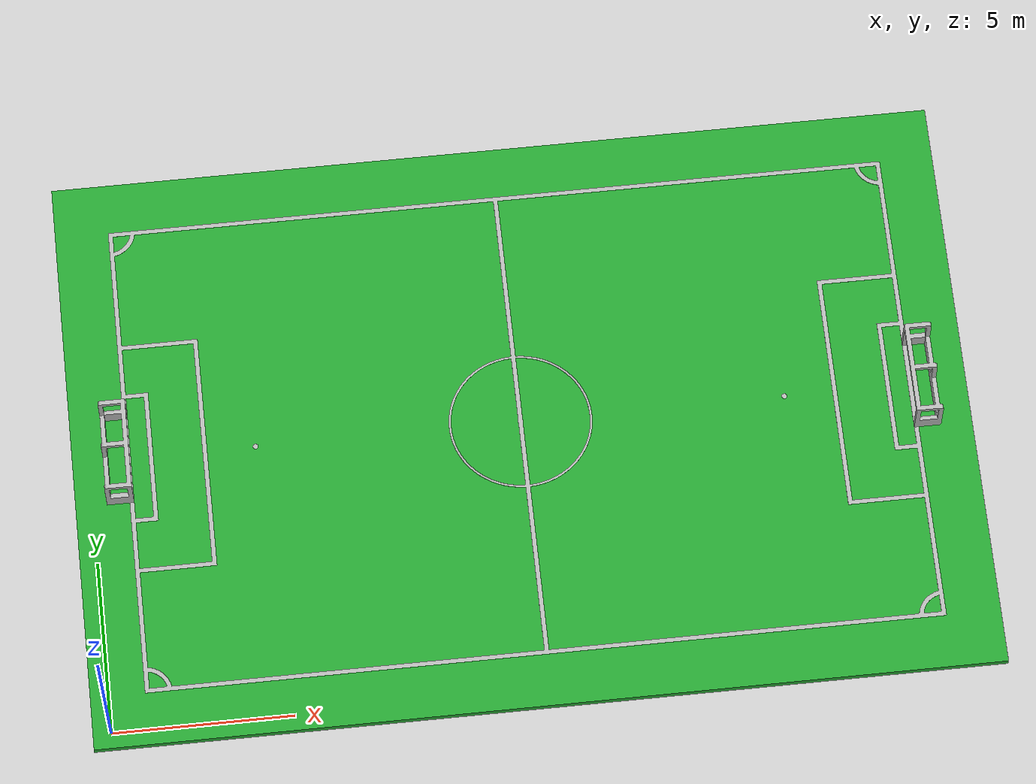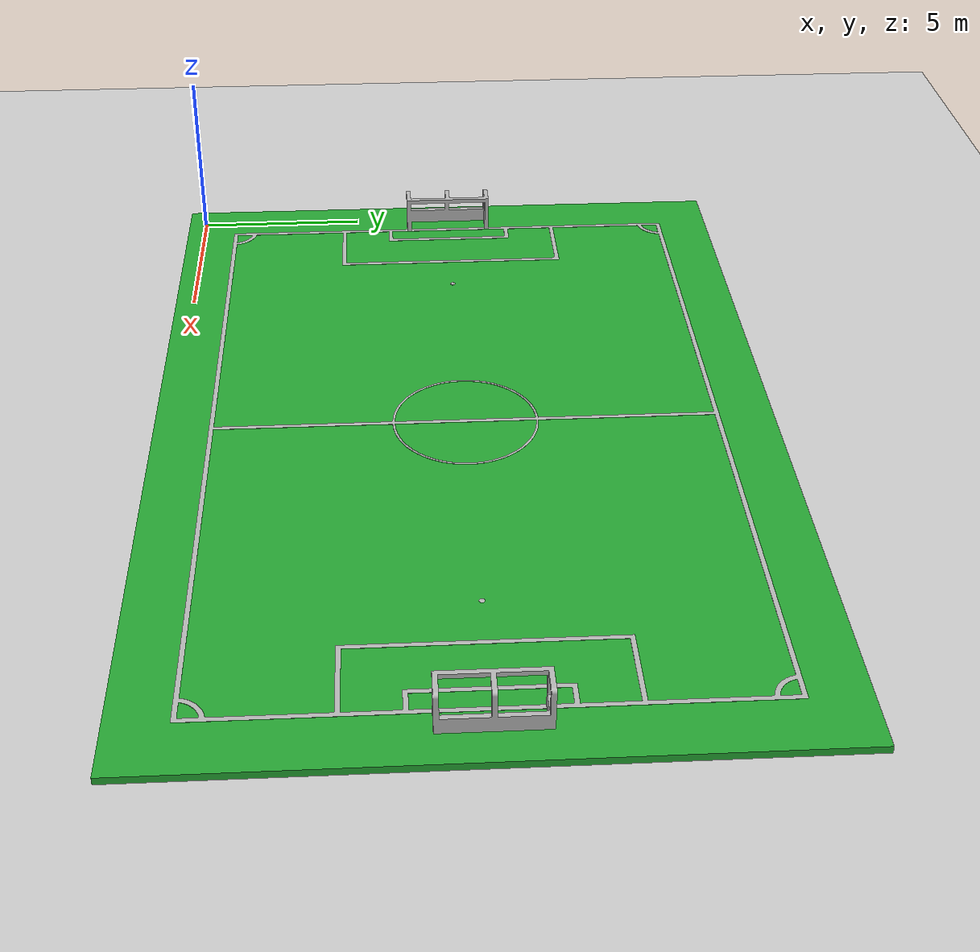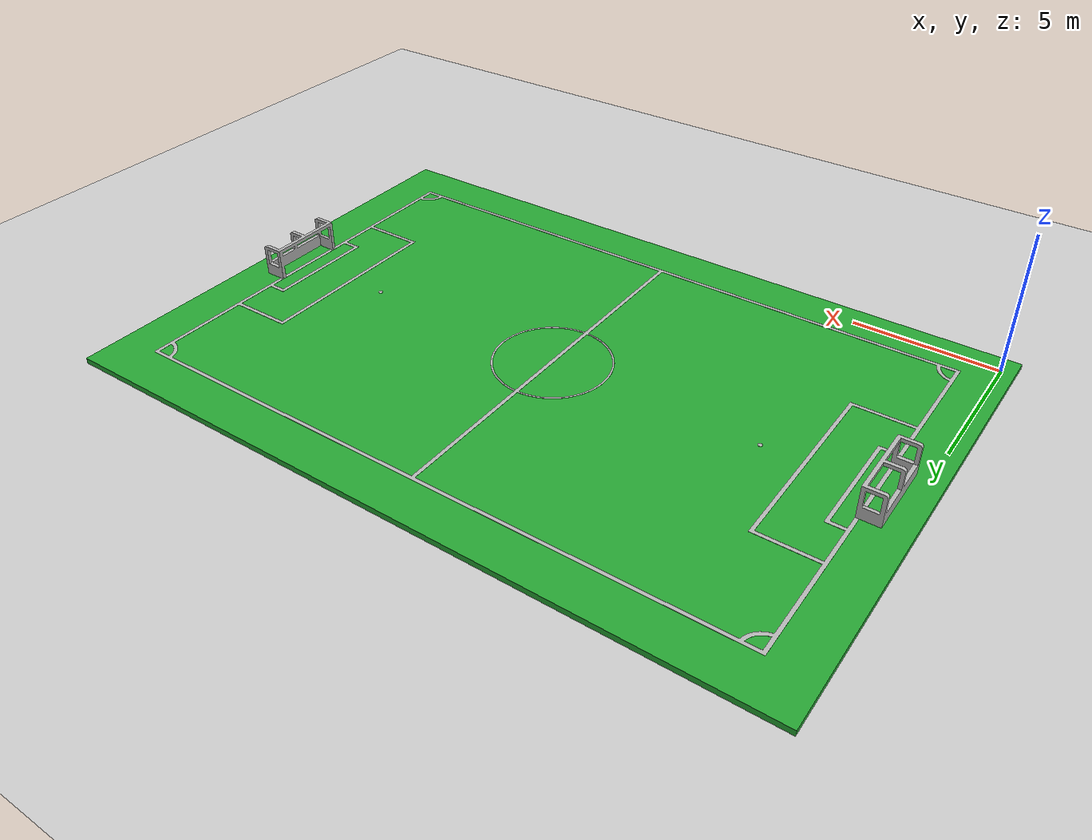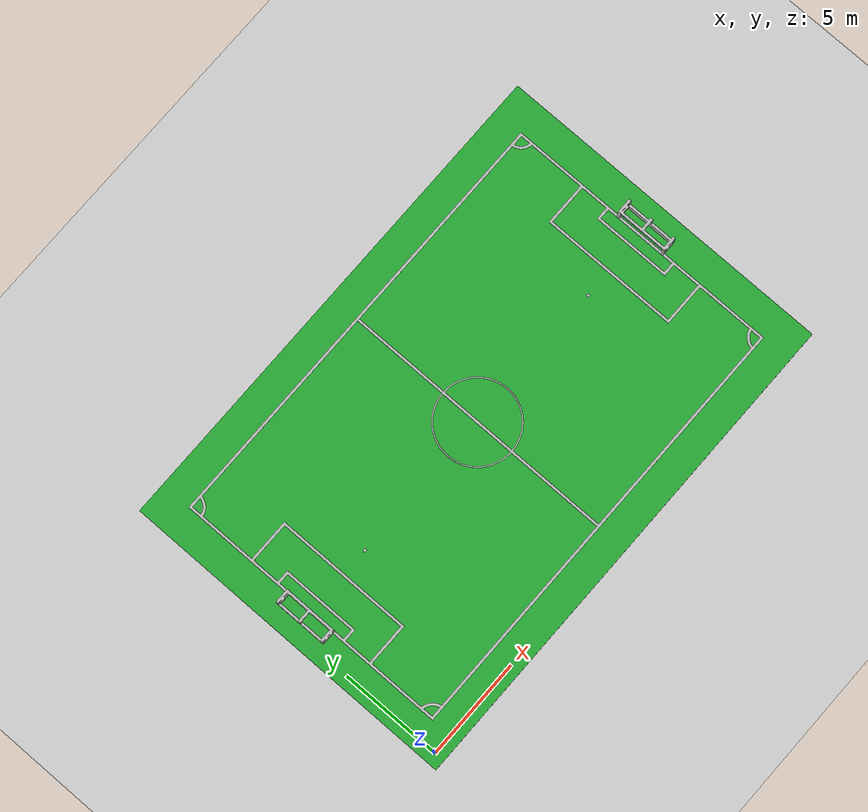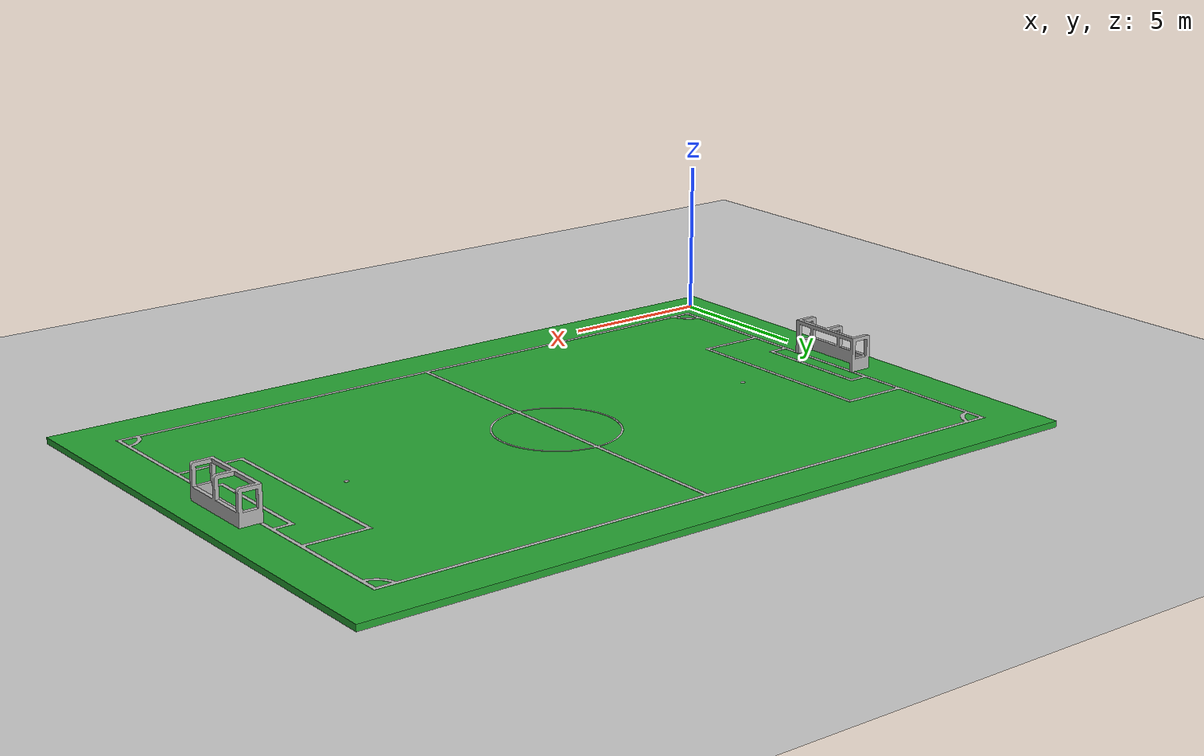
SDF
<sdf version="1.7">
 <world name="default">
  <light name="sun" type="directional">
   <pose>0 0 10 0 -0 0</pose>
   <diffuse>0.8 0.8 0.8 1</diffuse>
   <specular>0.2 0.2 0.2 1</specular>
   <attenuation>
    <range>1000</range>
    <constant>0.9</constant>
    <linear>0.01</linear>
    <quadratic>0.001</quadratic>
   </attenuation>
   <direction>-0.5 0.1 -0.9</direction>
   <spot><inner_angle>0</inner_angle><outer_angle>0</outer_angle><falloff>0</falloff></spot>
  </light>
  <model name="ground_plane">
   <static>1</static>
   <link name="link">
    <collision name="collision">
     <geometry><plane><normal>0 0 1</normal><size>100 100</size></plane></geometry>
     <surface>
      <contact><collide_bitmask>65535</collide_bitmask></contact>
      <friction><ode><mu>100</mu><mu2>50</mu2></ode></friction>
     </surface>
    </collision>
    <visual name="visual">
     <cast_shadows>0</cast_shadows>
     <geometry><plane><normal>0 0 1</normal><size>100 100</size></plane></geometry>
     <material>
      <script><uri>file://media/materials/scripts/gazebo.material</uri><name>Gazebo/Grey</name></script>
     </material>
    </visual>
   </link>
  </model>
  <gravity>0 0 -9.8</gravity>
  <magnetic_field>6e-06 2.3e-05 -4.2e-05</magnetic_field>
  <atmosphere type="adiabatic"/>
  <physics type="ode">
   <max_step_size>0.001</max_step_size>
   <real_time_factor>1</real_time_factor>
   <real_time_update_rate>1000</real_time_update_rate>
  </physics>
  <scene><ambient>0.4 0.4 0.4 1</ambient><background>0.7 0.7 0.7 1</background><shadows>1</shadows></scene>
  <audio><device>default</device></audio>
  <spherical_coordinates>
   <surface_model>EARTH_WGS84</surface_model>
   <latitude_deg>0</latitude_deg>
   <longitude_deg>0</longitude_deg>
   <elevation>0</elevation>
   <heading_deg>0</heading_deg>
  </spherical_coordinates>
  <model name="arena">
   <link name="base_link">
    <inertial>
     <pose>12 8 0.183004 0 -0 0</pose>
     <mass>104638</mass>
     <inertia>
      <ixx>2.40651e+06</ixx>
      <ixy>-2406.64</ixy>
      <ixz>-1.45519e-10</ixz>
      <iyy>5.89014e+06</iyy>
      <iyz>1.22236e-09</iyz>
      <izz>8.29144e+06</izz>
     </inertia>
    </inertial>
    <collision name="base_link_fixed_joint_lump__ground_collision">
     <geometry>
      <mesh>
       <scale>0.001 0.001 0.001</scale>
       <uri>file:///root/ros2_ws1/install/arena_description/share/arena_description/meshes/base_link.stl</uri>
      </mesh>
     </geometry>
    </collision>
    <collision name="base_link_fixed_joint_lump__Goal_post_1_1_collision_1">
     <pose>0 0 0.005 0 -0 0</pose>
     <geometry>
      <mesh>
       <scale>0.001 0.001 0.001</scale>
       <uri>file:///root/ros2_ws1/install/arena_description/share/arena_description/meshes/Goal_post_1_1.stl</uri>
      </mesh>
     </geometry>
    </collision>
    <collision name="base_link_fixed_joint_lump__Goal_post_1_2_collision_2">
     <pose>0 0 0.005 0 -0 0</pose>
     <geometry>
      <mesh>
       <scale>0.001 0.001 0.001</scale>
       <uri>file:///root/ros2_ws1/install/arena_description/share/arena_description/meshes/Goal_post_1_2.stl</uri>
      </mesh>
     </geometry>
    </collision>
    <visual name="base_link_fixed_joint_lump__ground_visual">
     <geometry>
      <mesh>
       <scale>0.001 0.001 0.001</scale>
       <uri>file:///root/ros2_ws1/install/arena_description/share/arena_description/meshes/base_link.stl</uri>
      </mesh>
     </geometry>
     <material>
      <script><name>Gazebo/Green</name><uri>file://media/materials/scripts/gazebo.material</uri></script>
     </material>
    </visual>
    <visual name="base_link_fixed_joint_lump__lines_1_visual_1">
     <pose>0 0 0.005 0 -0 0</pose>
     <geometry>
      <mesh>
       <scale>0.001 0.001 0.001</scale>
       <uri>file:///root/ros2_ws1/install/arena_description/share/arena_description/meshes/lines_1.stl</uri>
      </mesh>
     </geometry>
    </visual>
    <visual name="base_link_fixed_joint_lump__Goal_post_1_1_visual_2">
     <pose>0 0 0.005 0 -0 0</pose>
     <geometry>
      <mesh>
       <scale>0.001 0.001 0.001</scale>
       <uri>file:///root/ros2_ws1/install/arena_description/share/arena_description/meshes/Goal_post_1_1.stl</uri>
      </mesh>
     </geometry>
    </visual>
    <visual name="base_link_fixed_joint_lump__Goal_post_1_2_visual_3">
     <pose>0 0 0.005 0 -0 0</pose>
     <geometry>
      <mesh>
       <scale>0.001 0.001 0.001</scale>
       <uri>file:///root/ros2_ws1/install/arena_description/share/arena_description/meshes/Goal_post_1_2.stl</uri>
      </mesh>
     </geometry>
    </visual>
   </link>
   <pose>-5e-06 7e-06 -0.050001 0 -0 0</pose>
  </model>
 </world>
</sdf>
